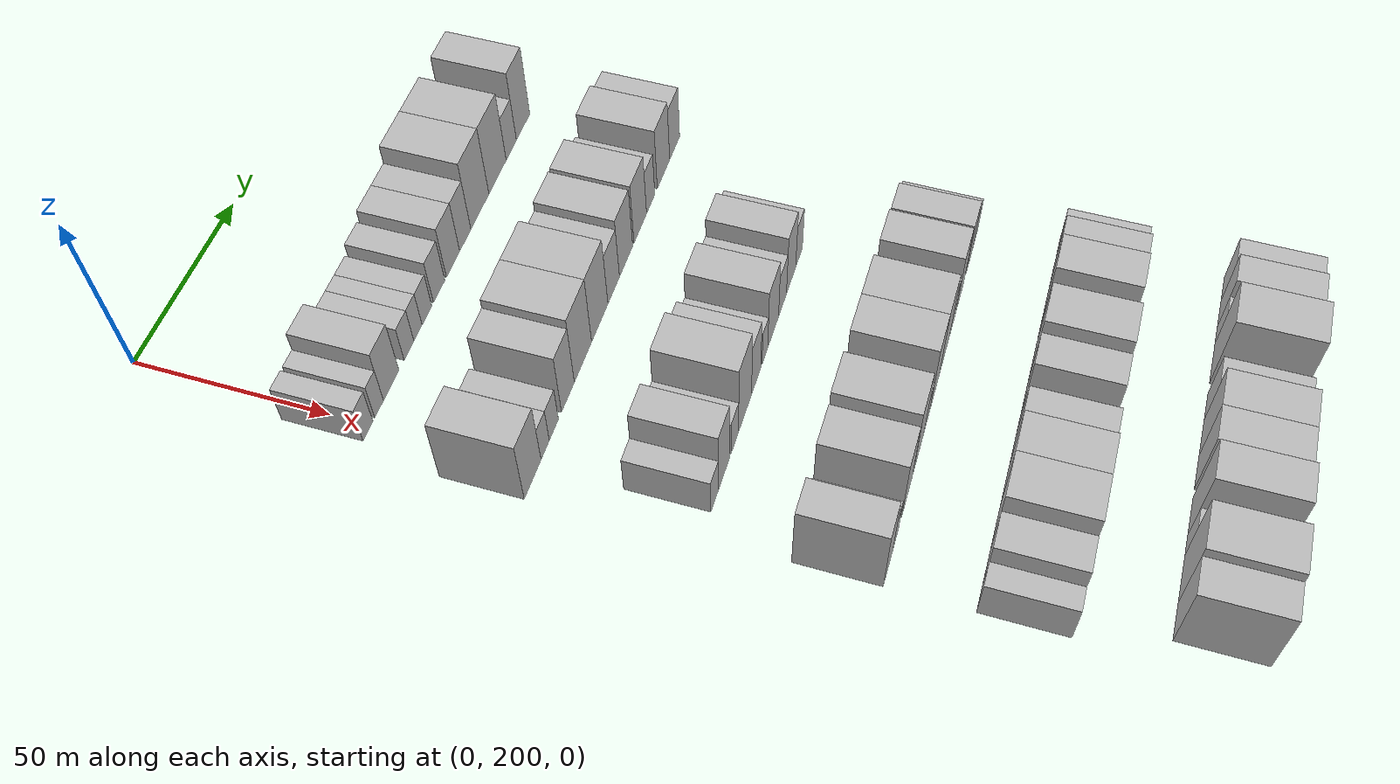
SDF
<sdf version="1.6">
 <world name="default">
  <model name="building_88">
   <static>1</static>
   <pose>50.0000 198.4063 0 0.000000 0.000000 0.000000</pose>
   <link name="link">
    <pose>0 0 6.00 0 0 0</pose>
    <collision name="collision"><geometry><box><size>20.0000 5.4040 12.0000</size></box></geometry></collision>
    <visual name="visual">
     <cast_shadows>0</cast_shadows>
     <geometry><box><size>20.0000 5.4040 12.0000</size></box></geometry>
     <material>
      <script>
       <uri>model://HANNAS_wall/materials/scripts</uri>
       <uri>model://HANNAS_wall/materials/textures</uri>
       <name>vrc/HANNAS_wall</name>
      </script>
     </material>
    </visual>
   </link>
  </model>
  <model name="building_89">
   <static>1</static>
   <pose>50.0000 204.5373 0 0.000000 0.000000 0.000000</pose>
   <link name="link">
    <pose>0 0 6.00 0 0 0</pose>
    <collision name="collision"><geometry><box><size>20.0000 4.8582 12.0000</size></box></geometry></collision>
    <visual name="visual">
     <cast_shadows>0</cast_shadows>
     <geometry><box><size>20.0000 4.8582 12.0000</size></box></geometry>
     <material>
      <script>
       <uri>model://HANNAS_wall/materials/scripts</uri>
       <uri>model://HANNAS_wall/materials/textures</uri>
       <name>vrc/HANNAS_wall</name>
      </script>
     </material>
    </visual>
   </link>
  </model>
  <model name="building_90">
   <static>1</static>
   <pose>50.0000 211.2955 0 0.000000 0.000000 0.000000</pose>
   <link name="link">
    <pose>0 0 9.00 0 0 0</pose>
    <collision name="collision"><geometry><box><size>20.0000 8.6582 18.0000</size></box></geometry></collision>
    <visual name="visual">
     <cast_shadows>0</cast_shadows>
     <geometry><box><size>20.0000 8.6582 18.0000</size></box></geometry>
     <material>
      <script>
       <uri>model://HANNAS_wall/materials/scripts</uri>
       <uri>model://HANNAS_wall/materials/textures</uri>
       <name>vrc/HANNAS_wall</name>
      </script>
     </material>
    </visual>
   </link>
  </model>
  <model name="building_91">
   <static>1</static>
   <pose>50.0000 221.4607 0 0.000000 0.000000 0.000000</pose>
   <link name="link">
    <pose>0 0 6.00 0 0 0</pose>
    <collision name="collision"><geometry><box><size>20.0000 5.6721 12.0000</size></box></geometry></collision>
    <visual name="visual">
     <cast_shadows>0</cast_shadows>
     <geometry><box><size>20.0000 5.6721 12.0000</size></box></geometry>
     <material>
      <script>
       <uri>model://HANNAS_wall/materials/scripts</uri>
       <uri>model://HANNAS_wall/materials/textures</uri>
       <name>vrc/HANNAS_wall</name>
      </script>
     </material>
    </visual>
   </link>
  </model>
  <model name="building_92">
   <static>1</static>
   <pose>50.0000 226.7251 0 0.000000 0.000000 0.000000</pose>
   <link name="link">
    <pose>0 0 6.00 0 0 0</pose>
    <collision name="collision"><geometry><box><size>20.0000 4.8568 12.0000</size></box></geometry></collision>
    <visual name="visual">
     <cast_shadows>0</cast_shadows>
     <geometry><box><size>20.0000 4.8568 12.0000</size></box></geometry>
     <material>
      <script>
       <uri>model://HANNAS_wall/materials/scripts</uri>
       <uri>model://HANNAS_wall/materials/textures</uri>
       <name>vrc/HANNAS_wall</name>
      </script>
     </material>
    </visual>
   </link>
  </model>
  <model name="building_93">
   <static>1</static>
   <pose>50.0000 232.0713 0 0.000000 0.000000 0.000000</pose>
   <link name="link">
    <pose>0 0 6.00 0 0 0</pose>
    <collision name="collision"><geometry><box><size>20.0000 5.8355 12.0000</size></box></geometry></collision>
    <visual name="visual">
     <cast_shadows>0</cast_shadows>
     <geometry><box><size>20.0000 5.8355 12.0000</size></box></geometry>
     <material>
      <script>
       <uri>model://HANNAS_wall/materials/scripts</uri>
       <uri>model://HANNAS_wall/materials/textures</uri>
       <name>vrc/HANNAS_wall</name>
      </script>
     </material>
    </visual>
   </link>
  </model>
  <model name="building_94">
   <static>1</static>
   <pose>50.0000 239.4819 0 0.000000 0.000000 0.000000</pose>
   <link name="link">
    <pose>0 0 7.50 0 0 0</pose>
    <collision name="collision"><geometry><box><size>20.0000 6.9856 15.0000</size></box></geometry></collision>
    <visual name="visual">
     <cast_shadows>0</cast_shadows>
     <geometry><box><size>20.0000 6.9856 15.0000</size></box></geometry>
     <material>
      <script>
       <uri>model://HANNAS_wall/materials/scripts</uri>
       <uri>model://HANNAS_wall/materials/textures</uri>
       <name>vrc/HANNAS_wall</name>
      </script>
     </material>
    </visual>
   </link>
  </model>
  <model name="building_95">
   <static>1</static>
   <pose>50.0000 248.1541 0 0.000000 0.000000 0.000000</pose>
   <link name="link">
    <pose>0 0 9.00 0 0 0</pose>
    <collision name="collision"><geometry><box><size>20.0000 8.3590 18.0000</size></box></geometry></collision>
    <visual name="visual">
     <cast_shadows>0</cast_shadows>
     <geometry><box><size>20.0000 8.3590 18.0000</size></box></geometry>
     <material>
      <script>
       <uri>model://HANNAS_wall/materials/scripts</uri>
       <uri>model://HANNAS_wall/materials/textures</uri>
       <name>vrc/HANNAS_wall</name>
      </script>
     </material>
    </visual>
   </link>
  </model>
  <model name="building_96">
   <static>1</static>
   <pose>50.0000 255.9483 0 0.000000 0.000000 0.000000</pose>
   <link name="link">
    <pose>0 0 9.00 0 0 0</pose>
    <collision name="collision"><geometry><box><size>20.0000 7.2294 18.0000</size></box></geometry></collision>
    <visual name="visual">
     <cast_shadows>0</cast_shadows>
     <geometry><box><size>20.0000 7.2294 18.0000</size></box></geometry>
     <material>
      <script>
       <uri>model://HANNAS_wall/materials/scripts</uri>
       <uri>model://HANNAS_wall/materials/textures</uri>
       <name>vrc/HANNAS_wall</name>
      </script>
     </material>
    </visual>
   </link>
  </model>
  <model name="building_97">
   <static>1</static>
   <pose>50.0000 265.5421 0 0.000000 0.000000 0.000000</pose>
   <link name="link">
    <pose>0 0 12.00 0 0 0</pose>
    <collision name="collision"><geometry><box><size>20.0000 11.9582 24.0000</size></box></geometry></collision>
    <visual name="visual">
     <cast_shadows>0</cast_shadows>
     <geometry><box><size>20.0000 11.9582 24.0000</size></box></geometry>
     <material>
      <script>
       <uri>model://HANNAS_wall/materials/scripts</uri>
       <uri>model://HANNAS_wall/materials/textures</uri>
       <name>vrc/HANNAS_wall</name>
      </script>
     </material>
    </visual>
   </link>
  </model>
  <model name="building_98">
   <static>1</static>
   <pose>50.0000 277.4570 0 0.000000 0.000000 0.000000</pose>
   <link name="link">
    <pose>0 0 12.00 0 0 0</pose>
    <collision name="collision"><geometry><box><size>20.0000 11.8715 24.0000</size></box></geometry></collision>
    <visual name="visual">
     <cast_shadows>0</cast_shadows>
     <geometry><box><size>20.0000 11.8715 24.0000</size></box></geometry>
     <material>
      <script>
       <uri>model://HANNAS_wall/materials/scripts</uri>
       <uri>model://HANNAS_wall/materials/textures</uri>
       <name>vrc/HANNAS_wall</name>
      </script>
     </material>
    </visual>
   </link>
  </model>
  <model name="building_99">
   <static>1</static>
   <pose>50.0000 286.9830 0 0.000000 0.000000 0.000000</pose>
   <link name="link">
    <pose>0 0 7.50 0 0 0</pose>
    <collision name="collision"><geometry><box><size>20.0000 7.1805 15.0000</size></box></geometry></collision>
    <visual name="visual">
     <cast_shadows>0</cast_shadows>
     <geometry><box><size>20.0000 7.1805 15.0000</size></box></geometry>
     <material>
      <script>
       <uri>model://HANNAS_wall/materials/scripts</uri>
       <uri>model://HANNAS_wall/materials/textures</uri>
       <name>vrc/HANNAS_wall</name>
      </script>
     </material>
    </visual>
   </link>
  </model>
  <model name="building_100">
   <static>1</static>
   <pose>50.0000 295.3854 0 0.000000 0.000000 0.000000</pose>
   <link name="link">
    <pose>0 0 12.00 0 0 0</pose>
    <collision name="collision"><geometry><box><size>20.0000 9.6243 24.0000</size></box></geometry></collision>
    <visual name="visual">
     <cast_shadows>0</cast_shadows>
     <geometry><box><size>20.0000 9.6243 24.0000</size></box></geometry>
     <material>
      <script>
       <uri>model://HANNAS_wall/materials/scripts</uri>
       <uri>model://HANNAS_wall/materials/textures</uri>
       <name>vrc/HANNAS_wall</name>
      </script>
     </material>
    </visual>
   </link>
  </model>
  <model name="building_235">
   <static>1</static>
   <pose>90.0000 197.2488 0 0.000000 0.000000 0.000000</pose>
   <link name="link">
    <pose>0 0 10.50 0 0 0</pose>
    <collision name="collision"><geometry><box><size>20.0000 10.4113 21.0000</size></box></geometry></collision>
    <visual name="visual">
     <cast_shadows>0</cast_shadows>
     <geometry><box><size>20.0000 10.4113 21.0000</size></box></geometry>
     <material>
      <script>
       <uri>model://HANNAS_wall/materials/scripts</uri>
       <uri>model://HANNAS_wall/materials/textures</uri>
       <name>vrc/HANNAS_wall</name>
      </script>
     </material>
    </visual>
   </link>
  </model>
  <model name="building_236">
   <static>1</static>
   <pose>90.0000 205.0738 0 0.000000 0.000000 0.000000</pose>
   <link name="link">
    <pose>0 0 6.00 0 0 0</pose>
    <collision name="collision"><geometry><box><size>20.0000 5.2387 12.0000</size></box></geometry></collision>
    <visual name="visual">
     <cast_shadows>0</cast_shadows>
     <geometry><box><size>20.0000 5.2387 12.0000</size></box></geometry>
     <material>
      <script>
       <uri>model://HANNAS_wall/materials/scripts</uri>
       <uri>model://HANNAS_wall/materials/textures</uri>
       <name>vrc/HANNAS_wall</name>
      </script>
     </material>
    </visual>
   </link>
  </model>
  <model name="building_237">
   <static>1</static>
   <pose>90.0000 210.6350 0 0.000000 0.000000 0.000000</pose>
   <link name="link">
    <pose>0 0 6.00 0 0 0</pose>
    <collision name="collision"><geometry><box><size>20.0000 5.8837 12.0000</size></box></geometry></collision>
    <visual name="visual">
     <cast_shadows>0</cast_shadows>
     <geometry><box><size>20.0000 5.8837 12.0000</size></box></geometry>
     <material>
      <script>
       <uri>model://HANNAS_wall/materials/scripts</uri>
       <uri>model://HANNAS_wall/materials/textures</uri>
       <name>vrc/HANNAS_wall</name>
      </script>
     </material>
    </visual>
   </link>
  </model>
  <model name="building_238">
   <static>1</static>
   <pose>90.0000 219.8347 0 0.000000 0.000000 0.000000</pose>
   <link name="link">
    <pose>0 0 10.50 0 0 0</pose>
    <collision name="collision"><geometry><box><size>20.0000 8.5156 21.0000</size></box></geometry></collision>
    <visual name="visual">
     <cast_shadows>0</cast_shadows>
     <geometry><box><size>20.0000 8.5156 21.0000</size></box></geometry>
     <material>
      <script>
       <uri>model://HANNAS_wall/materials/scripts</uri>
       <uri>model://HANNAS_wall/materials/textures</uri>
       <name>vrc/HANNAS_wall</name>
      </script>
     </material>
    </visual>
   </link>
  </model>
  <model name="building_239">
   <static>1</static>
   <pose>90.0000 230.0030 0 0.000000 0.000000 0.000000</pose>
   <link name="link">
    <pose>0 0 12.00 0 0 0</pose>
    <collision name="collision"><geometry><box><size>20.0000 11.8212 24.0000</size></box></geometry></collision>
    <visual name="visual">
     <cast_shadows>0</cast_shadows>
     <geometry><box><size>20.0000 11.8212 24.0000</size></box></geometry>
     <material>
      <script>
       <uri>model://HANNAS_wall/materials/scripts</uri>
       <uri>model://HANNAS_wall/materials/textures</uri>
       <name>vrc/HANNAS_wall</name>
      </script>
     </material>
    </visual>
   </link>
  </model>
  <model name="building_240">
   <static>1</static>
   <pose>90.0000 241.7351 0 0.000000 0.000000 0.000000</pose>
   <link name="link">
    <pose>0 0 12.00 0 0 0</pose>
    <collision name="collision"><geometry><box><size>20.0000 11.6429 24.0000</size></box></geometry></collision>
    <visual name="visual">
     <cast_shadows>0</cast_shadows>
     <geometry><box><size>20.0000 11.6429 24.0000</size></box></geometry>
     <material>
      <script>
       <uri>model://HANNAS_wall/materials/scripts</uri>
       <uri>model://HANNAS_wall/materials/textures</uri>
       <name>vrc/HANNAS_wall</name>
      </script>
     </material>
    </visual>
   </link>
  </model>
  <model name="building_241">
   <static>1</static>
   <pose>90.0000 251.7775 0 0.000000 0.000000 0.000000</pose>
   <link name="link">
    <pose>0 0 9.00 0 0 0</pose>
    <collision name="collision"><geometry><box><size>20.0000 8.4418 18.0000</size></box></geometry></collision>
    <visual name="visual">
     <cast_shadows>0</cast_shadows>
     <geometry><box><size>20.0000 8.4418 18.0000</size></box></geometry>
     <material>
      <script>
       <uri>model://HANNAS_wall/materials/scripts</uri>
       <uri>model://HANNAS_wall/materials/textures</uri>
       <name>vrc/HANNAS_wall</name>
      </script>
     </material>
    </visual>
   </link>
  </model>
  <model name="building_242">
   <static>1</static>
   <pose>90.0000 260.9707 0 0.000000 0.000000 0.000000</pose>
   <link name="link">
    <pose>0 0 10.50 0 0 0</pose>
    <collision name="collision"><geometry><box><size>20.0000 9.9446 21.0000</size></box></geometry></collision>
    <visual name="visual">
     <cast_shadows>0</cast_shadows>
     <geometry><box><size>20.0000 9.9446 21.0000</size></box></geometry>
     <material>
      <script>
       <uri>model://HANNAS_wall/materials/scripts</uri>
       <uri>model://HANNAS_wall/materials/textures</uri>
       <name>vrc/HANNAS_wall</name>
      </script>
     </material>
    </visual>
   </link>
  </model>
  <model name="building_243">
   <static>1</static>
   <pose>90.0000 271.8295 0 0.000000 0.000000 0.000000</pose>
   <link name="link">
    <pose>0 0 10.50 0 0 0</pose>
    <collision name="collision"><geometry><box><size>20.0000 9.7730 21.0000</size></box></geometry></collision>
    <visual name="visual">
     <cast_shadows>0</cast_shadows>
     <geometry><box><size>20.0000 9.7730 21.0000</size></box></geometry>
     <material>
      <script>
       <uri>model://HANNAS_wall/materials/scripts</uri>
       <uri>model://HANNAS_wall/materials/textures</uri>
       <name>vrc/HANNAS_wall</name>
      </script>
     </material>
    </visual>
   </link>
  </model>
  <model name="building_244">
   <static>1</static>
   <pose>90.0000 279.9924 0 0.000000 0.000000 0.000000</pose>
   <link name="link">
    <pose>0 0 7.50 0 0 0</pose>
    <collision name="collision"><geometry><box><size>20.0000 6.5527 15.0000</size></box></geometry></collision>
    <visual name="visual">
     <cast_shadows>0</cast_shadows>
     <geometry><box><size>20.0000 6.5527 15.0000</size></box></geometry>
     <material>
      <script>
       <uri>model://HANNAS_wall/materials/scripts</uri>
       <uri>model://HANNAS_wall/materials/textures</uri>
       <name>vrc/HANNAS_wall</name>
      </script>
     </material>
    </visual>
   </link>
  </model>
  <model name="building_245">
   <static>1</static>
   <pose>90.0000 290.3393 0 0.000000 0.000000 0.000000</pose>
   <link name="link">
    <pose>0 0 10.50 0 0 0</pose>
    <collision name="collision"><geometry><box><size>20.0000 10.1412 21.0000</size></box></geometry></collision>
    <visual name="visual">
     <cast_shadows>0</cast_shadows>
     <geometry><box><size>20.0000 10.1412 21.0000</size></box></geometry>
     <material>
      <script>
       <uri>model://HANNAS_wall/materials/scripts</uri>
       <uri>model://HANNAS_wall/materials/textures</uri>
       <name>vrc/HANNAS_wall</name>
      </script>
     </material>
    </visual>
   </link>
  </model>
  <model name="building_246">
   <static>1</static>
   <pose>90.0000 299.5653 0 0.000000 0.000000 0.000000</pose>
   <link name="link">
    <pose>0 0 9.00 0 0 0</pose>
    <collision name="collision"><geometry><box><size>20.0000 8.3109 18.0000</size></box></geometry></collision>
    <visual name="visual">
     <cast_shadows>0</cast_shadows>
     <geometry><box><size>20.0000 8.3109 18.0000</size></box></geometry>
     <material>
      <script>
       <uri>model://HANNAS_wall/materials/scripts</uri>
       <uri>model://HANNAS_wall/materials/textures</uri>
       <name>vrc/HANNAS_wall</name>
      </script>
     </material>
    </visual>
   </link>
  </model>
  <model name="building_373">
   <static>1</static>
   <pose>130.0000 203.5998 0 0.000000 0.000000 0.000000</pose>
   <link name="link">
    <pose>0 0 6.00 0 0 0</pose>
    <collision name="collision"><geometry><box><size>20.0000 5.8492 12.0000</size></box></geometry></collision>
    <visual name="visual">
     <cast_shadows>0</cast_shadows>
     <geometry><box><size>20.0000 5.8492 12.0000</size></box></geometry>
     <material>
      <script>
       <uri>model://HANNAS_wall/materials/scripts</uri>
       <uri>model://HANNAS_wall/materials/textures</uri>
       <name>vrc/HANNAS_wall</name>
      </script>
     </material>
    </visual>
   </link>
  </model>
  <model name="building_374">
   <static>1</static>
   <pose>130.0000 210.7465 0 0.000000 0.000000 0.000000</pose>
   <link name="link">
    <pose>0 0 10.50 0 0 0</pose>
    <collision name="collision"><geometry><box><size>20.0000 8.4442 21.0000</size></box></geometry></collision>
    <visual name="visual">
     <cast_shadows>0</cast_shadows>
     <geometry><box><size>20.0000 8.4442 21.0000</size></box></geometry>
     <material>
      <script>
       <uri>model://HANNAS_wall/materials/scripts</uri>
       <uri>model://HANNAS_wall/materials/textures</uri>
       <name>vrc/HANNAS_wall</name>
      </script>
     </material>
    </visual>
   </link>
  </model>
  <model name="building_375">
   <static>1</static>
   <pose>130.0000 218.9657 0 0.000000 0.000000 0.000000</pose>
   <link name="link">
    <pose>0 0 6.00 0 0 0</pose>
    <collision name="collision"><geometry><box><size>20.0000 5.9942 12.0000</size></box></geometry></collision>
    <visual name="visual">
     <cast_shadows>0</cast_shadows>
     <geometry><box><size>20.0000 5.9942 12.0000</size></box></geometry>
     <material>
      <script>
       <uri>model://HANNAS_wall/materials/scripts</uri>
       <uri>model://HANNAS_wall/materials/textures</uri>
       <name>vrc/HANNAS_wall</name>
      </script>
     </material>
    </visual>
   </link>
  </model>
  <model name="building_376">
   <static>1</static>
   <pose>130.0000 227.2033 0 0.000000 0.000000 0.000000</pose>
   <link name="link">
    <pose>0 0 12.00 0 0 0</pose>
    <collision name="collision"><geometry><box><size>20.0000 10.4810 24.0000</size></box></geometry></collision>
    <visual name="visual">
     <cast_shadows>0</cast_shadows>
     <geometry><box><size>20.0000 10.4810 24.0000</size></box></geometry>
     <material>
      <script>
       <uri>model://HANNAS_wall/materials/scripts</uri>
       <uri>model://HANNAS_wall/materials/textures</uri>
       <name>vrc/HANNAS_wall</name>
      </script>
     </material>
    </visual>
   </link>
  </model>
  <model name="building_377">
   <static>1</static>
   <pose>130.0000 236.3045 0 0.000000 0.000000 0.000000</pose>
   <link name="link">
    <pose>0 0 9.00 0 0 0</pose>
    <collision name="collision"><geometry><box><size>20.0000 7.7214 18.0000</size></box></geometry></collision>
    <visual name="visual">
     <cast_shadows>0</cast_shadows>
     <geometry><box><size>20.0000 7.7214 18.0000</size></box></geometry>
     <material>
      <script>
       <uri>model://HANNAS_wall/materials/scripts</uri>
       <uri>model://HANNAS_wall/materials/textures</uri>
       <name>vrc/HANNAS_wall</name>
      </script>
     </material>
    </visual>
   </link>
  </model>
  <model name="building_378">
   <static>1</static>
   <pose>130.0000 243.6128 0 0.000000 0.000000 0.000000</pose>
   <link name="link">
    <pose>0 0 6.00 0 0 0</pose>
    <collision name="collision"><geometry><box><size>20.0000 4.8952 12.0000</size></box></geometry></collision>
    <visual name="visual">
     <cast_shadows>0</cast_shadows>
     <geometry><box><size>20.0000 4.8952 12.0000</size></box></geometry>
     <material>
      <script>
       <uri>model://HANNAS_wall/materials/scripts</uri>
       <uri>model://HANNAS_wall/materials/textures</uri>
       <name>vrc/HANNAS_wall</name>
      </script>
     </material>
    </visual>
   </link>
  </model>
  <model name="building_379">
   <static>1</static>
   <pose>130.0000 250.7556 0 0.000000 0.000000 0.000000</pose>
   <link name="link">
    <pose>0 0 10.50 0 0 0</pose>
    <collision name="collision"><geometry><box><size>20.0000 9.3904 21.0000</size></box></geometry></collision>
    <visual name="visual">
     <cast_shadows>0</cast_shadows>
     <geometry><box><size>20.0000 9.3904 21.0000</size></box></geometry>
     <material>
      <script>
       <uri>model://HANNAS_wall/materials/scripts</uri>
       <uri>model://HANNAS_wall/materials/textures</uri>
       <name>vrc/HANNAS_wall</name>
      </script>
     </material>
    </visual>
   </link>
  </model>
  <model name="building_380">
   <static>1</static>
   <pose>130.0000 258.9596 0 0.000000 0.000000 0.000000</pose>
   <link name="link">
    <pose>0 0 7.50 0 0 0</pose>
    <collision name="collision"><geometry><box><size>20.0000 7.0175 15.0000</size></box></geometry></collision>
    <visual name="visual">
     <cast_shadows>0</cast_shadows>
     <geometry><box><size>20.0000 7.0175 15.0000</size></box></geometry>
     <material>
      <script>
       <uri>model://HANNAS_wall/materials/scripts</uri>
       <uri>model://HANNAS_wall/materials/textures</uri>
       <name>vrc/HANNAS_wall</name>
      </script>
     </material>
    </visual>
   </link>
  </model>
  <model name="building_381">
   <static>1</static>
   <pose>130.0000 266.6723 0 0.000000 0.000000 0.000000</pose>
   <link name="link">
    <pose>0 0 10.50 0 0 0</pose>
    <collision name="collision"><geometry><box><size>20.0000 8.4079 21.0000</size></box></geometry></collision>
    <visual name="visual">
     <cast_shadows>0</cast_shadows>
     <geometry><box><size>20.0000 8.4079 21.0000</size></box></geometry>
     <material>
      <script>
       <uri>model://HANNAS_wall/materials/scripts</uri>
       <uri>model://HANNAS_wall/materials/textures</uri>
       <name>vrc/HANNAS_wall</name>
      </script>
     </material>
    </visual>
   </link>
  </model>
  <model name="building_382">
   <static>1</static>
   <pose>130.0000 273.9990 0 0.000000 0.000000 0.000000</pose>
   <link name="link">
    <pose>0 0 7.50 0 0 0</pose>
    <collision name="collision"><geometry><box><size>20.0000 6.2455 15.0000</size></box></geometry></collision>
    <visual name="visual">
     <cast_shadows>0</cast_shadows>
     <geometry><box><size>20.0000 6.2455 15.0000</size></box></geometry>
     <material>
      <script>
       <uri>model://HANNAS_wall/materials/scripts</uri>
       <uri>model://HANNAS_wall/materials/textures</uri>
       <name>vrc/HANNAS_wall</name>
      </script>
     </material>
    </visual>
   </link>
  </model>
  <model name="building_504">
   <static>1</static>
   <pose>170.0000 198.3753 0 0.000000 0.000000 0.000000</pose>
   <link name="link">
    <pose>0 0 10.50 0 0 0</pose>
    <collision name="collision"><geometry><box><size>20.0000 8.8227 21.0000</size></box></geometry></collision>
    <visual name="visual">
     <cast_shadows>0</cast_shadows>
     <geometry><box><size>20.0000 8.8227 21.0000</size></box></geometry>
     <material>
      <script>
       <uri>model://HANNAS_wall/materials/scripts</uri>
       <uri>model://HANNAS_wall/materials/textures</uri>
       <name>vrc/HANNAS_wall</name>
      </script>
     </material>
    </visual>
   </link>
  </model>
  <model name="building_505">
   <static>1</static>
   <pose>170.0000 205.4910 0 0.000000 0.000000 0.000000</pose>
   <link name="link">
    <pose>0 0 6.00 0 0 0</pose>
    <collision name="collision"><geometry><box><size>20.0000 5.4086 12.0000</size></box></geometry></collision>
    <visual name="visual">
     <cast_shadows>0</cast_shadows>
     <geometry><box><size>20.0000 5.4086 12.0000</size></box></geometry>
     <material>
      <script>
       <uri>model://HANNAS_wall/materials/scripts</uri>
       <uri>model://HANNAS_wall/materials/textures</uri>
       <name>vrc/HANNAS_wall</name>
      </script>
     </material>
    </visual>
   </link>
  </model>
  <model name="building_506">
   <static>1</static>
   <pose>170.0000 216.3439 0 0.000000 0.000000 0.000000</pose>
   <link name="link">
    <pose>0 0 10.50 0 0 0</pose>
    <collision name="collision"><geometry><box><size>20.0000 10.2972 21.0000</size></box></geometry></collision>
    <visual name="visual">
     <cast_shadows>0</cast_shadows>
     <geometry><box><size>20.0000 10.2972 21.0000</size></box></geometry>
     <material>
      <script>
       <uri>model://HANNAS_wall/materials/scripts</uri>
       <uri>model://HANNAS_wall/materials/textures</uri>
       <name>vrc/HANNAS_wall</name>
      </script>
     </material>
    </visual>
   </link>
  </model>
  <model name="building_507">
   <static>1</static>
   <pose>170.0000 228.0105 0 0.000000 0.000000 0.000000</pose>
   <link name="link">
    <pose>0 0 12.00 0 0 0</pose>
    <collision name="collision"><geometry><box><size>20.0000 11.0360 24.0000</size></box></geometry></collision>
    <visual name="visual">
     <cast_shadows>0</cast_shadows>
     <geometry><box><size>20.0000 11.0360 24.0000</size></box></geometry>
     <material>
      <script>
       <uri>model://HANNAS_wall/materials/scripts</uri>
       <uri>model://HANNAS_wall/materials/textures</uri>
       <name>vrc/HANNAS_wall</name>
      </script>
     </material>
    </visual>
   </link>
  </model>
  <model name="building_508">
   <static>1</static>
   <pose>170.0000 236.4474 0 0.000000 0.000000 0.000000</pose>
   <link name="link">
    <pose>0 0 6.00 0 0 0</pose>
    <collision name="collision"><geometry><box><size>20.0000 5.8377 12.0000</size></box></geometry></collision>
    <visual name="visual">
     <cast_shadows>0</cast_shadows>
     <geometry><box><size>20.0000 5.8377 12.0000</size></box></geometry>
     <material>
      <script>
       <uri>model://HANNAS_wall/materials/scripts</uri>
       <uri>model://HANNAS_wall/materials/textures</uri>
       <name>vrc/HANNAS_wall</name>
      </script>
     </material>
    </visual>
   </link>
  </model>
  <model name="building_509">
   <static>1</static>
   <pose>170.0000 244.5818 0 0.000000 0.000000 0.000000</pose>
   <link name="link">
    <pose>0 0 12.00 0 0 0</pose>
    <collision name="collision"><geometry><box><size>20.0000 10.4312 24.0000</size></box></geometry></collision>
    <visual name="visual">
     <cast_shadows>0</cast_shadows>
     <geometry><box><size>20.0000 10.4312 24.0000</size></box></geometry>
     <material>
      <script>
       <uri>model://HANNAS_wall/materials/scripts</uri>
       <uri>model://HANNAS_wall/materials/textures</uri>
       <name>vrc/HANNAS_wall</name>
      </script>
     </material>
    </visual>
   </link>
  </model>
  <model name="building_510">
   <static>1</static>
   <pose>170.0000 255.4955 0 0.000000 0.000000 0.000000</pose>
   <link name="link">
    <pose>0 0 12.00 0 0 0</pose>
    <collision name="collision"><geometry><box><size>20.0000 11.3961 24.0000</size></box></geometry></collision>
    <visual name="visual">
     <cast_shadows>0</cast_shadows>
     <geometry><box><size>20.0000 11.3961 24.0000</size></box></geometry>
     <material>
      <script>
       <uri>model://HANNAS_wall/materials/scripts</uri>
       <uri>model://HANNAS_wall/materials/textures</uri>
       <name>vrc/HANNAS_wall</name>
      </script>
     </material>
    </visual>
   </link>
  </model>
  <model name="building_511">
   <static>1</static>
   <pose>170.0000 264.2254 0 0.000000 0.000000 0.000000</pose>
   <link name="link">
    <pose>0 0 7.50 0 0 0</pose>
    <collision name="collision"><geometry><box><size>20.0000 6.0638 15.0000</size></box></geometry></collision>
    <visual name="visual">
     <cast_shadows>0</cast_shadows>
     <geometry><box><size>20.0000 6.0638 15.0000</size></box></geometry>
     <material>
      <script>
       <uri>model://HANNAS_wall/materials/scripts</uri>
       <uri>model://HANNAS_wall/materials/textures</uri>
       <name>vrc/HANNAS_wall</name>
      </script>
     </material>
    </visual>
   </link>
  </model>
  <model name="building_512">
   <static>1</static>
   <pose>170.0000 273.0009 0 0.000000 0.000000 0.000000</pose>
   <link name="link">
    <pose>0 0 10.50 0 0 0</pose>
    <collision name="collision"><geometry><box><size>20.0000 9.4872 21.0000</size></box></geometry></collision>
    <visual name="visual">
     <cast_shadows>0</cast_shadows>
     <geometry><box><size>20.0000 9.4872 21.0000</size></box></geometry>
     <material>
      <script>
       <uri>model://HANNAS_wall/materials/scripts</uri>
       <uri>model://HANNAS_wall/materials/textures</uri>
       <name>vrc/HANNAS_wall</name>
      </script>
     </material>
    </visual>
   </link>
  </model>
  <model name="building_513">
   <static>1</static>
   <pose>170.0000 284.8456 0 0.000000 0.000000 0.000000</pose>
   <link name="link">
    <pose>0 0 9.00 0 0 0</pose>
    <collision name="collision"><geometry><box><size>20.0000 8.2023 18.0000</size></box></geometry></collision>
    <visual name="visual">
     <cast_shadows>0</cast_shadows>
     <geometry><box><size>20.0000 8.2023 18.0000</size></box></geometry>
     <material>
      <script>
       <uri>model://HANNAS_wall/materials/scripts</uri>
       <uri>model://HANNAS_wall/materials/textures</uri>
       <name>vrc/HANNAS_wall</name>
      </script>
     </material>
    </visual>
   </link>
  </model>
  <model name="building_514">
   <static>1</static>
   <pose>170.0000 291.9371 0 0.000000 0.000000 0.000000</pose>
   <link name="link">
    <pose>0 0 6.00 0 0 0</pose>
    <collision name="collision"><geometry><box><size>20.0000 5.9806 12.0000</size></box></geometry></collision>
    <visual name="visual">
     <cast_shadows>0</cast_shadows>
     <geometry><box><size>20.0000 5.9806 12.0000</size></box></geometry>
     <material>
      <script>
       <uri>model://HANNAS_wall/materials/scripts</uri>
       <uri>model://HANNAS_wall/materials/textures</uri>
       <name>vrc/HANNAS_wall</name>
      </script>
     </material>
    </visual>
   </link>
  </model>
  <model name="building_641">
   <static>1</static>
   <pose>210.0000 196.6563 0 0.000000 0.000000 0.000000</pose>
   <link name="link">
    <pose>0 0 6.00 0 0 0</pose>
    <collision name="collision"><geometry><box><size>20.0000 5.8273 12.0000</size></box></geometry></collision>
    <visual name="visual">
     <cast_shadows>0</cast_shadows>
     <geometry><box><size>20.0000 5.8273 12.0000</size></box></geometry>
     <material>
      <script>
       <uri>model://HANNAS_wall/materials/scripts</uri>
       <uri>model://HANNAS_wall/materials/textures</uri>
       <name>vrc/HANNAS_wall</name>
      </script>
     </material>
    </visual>
   </link>
  </model>
  <model name="building_642">
   <static>1</static>
   <pose>210.0000 203.9281 0 0.000000 0.000000 0.000000</pose>
   <link name="link">
    <pose>0 0 9.00 0 0 0</pose>
    <collision name="collision"><geometry><box><size>20.0000 8.7163 18.0000</size></box></geometry></collision>
    <visual name="visual">
     <cast_shadows>0</cast_shadows>
     <geometry><box><size>20.0000 8.7163 18.0000</size></box></geometry>
     <material>
      <script>
       <uri>model://HANNAS_wall/materials/scripts</uri>
       <uri>model://HANNAS_wall/materials/textures</uri>
       <name>vrc/HANNAS_wall</name>
      </script>
     </material>
    </visual>
   </link>
  </model>
  <model name="building_643">
   <static>1</static>
   <pose>210.0000 213.9675 0 0.000000 0.000000 0.000000</pose>
   <link name="link">
    <pose>0 0 12.00 0 0 0</pose>
    <collision name="collision"><geometry><box><size>20.0000 11.3625 24.0000</size></box></geometry></collision>
    <visual name="visual">
     <cast_shadows>0</cast_shadows>
     <geometry><box><size>20.0000 11.3625 24.0000</size></box></geometry>
     <material>
      <script>
       <uri>model://HANNAS_wall/materials/scripts</uri>
       <uri>model://HANNAS_wall/materials/textures</uri>
       <name>vrc/HANNAS_wall</name>
      </script>
     </material>
    </visual>
   </link>
  </model>
  <model name="building_644">
   <static>1</static>
   <pose>210.0000 224.7559 0 0.000000 0.000000 0.000000</pose>
   <link name="link">
    <pose>0 0 12.00 0 0 0</pose>
    <collision name="collision"><geometry><box><size>20.0000 10.2143 24.0000</size></box></geometry></collision>
    <visual name="visual">
     <cast_shadows>0</cast_shadows>
     <geometry><box><size>20.0000 10.2143 24.0000</size></box></geometry>
     <material>
      <script>
       <uri>model://HANNAS_wall/materials/scripts</uri>
       <uri>model://HANNAS_wall/materials/textures</uri>
       <name>vrc/HANNAS_wall</name>
      </script>
     </material>
    </visual>
   </link>
  </model>
  <model name="building_645">
   <static>1</static>
   <pose>210.0000 234.1056 0 0.000000 0.000000 0.000000</pose>
   <link name="link">
    <pose>0 0 10.50 0 0 0</pose>
    <collision name="collision"><geometry><box><size>20.0000 8.4850 21.0000</size></box></geometry></collision>
    <visual name="visual">
     <cast_shadows>0</cast_shadows>
     <geometry><box><size>20.0000 8.4850 21.0000</size></box></geometry>
     <material>
      <script>
       <uri>model://HANNAS_wall/materials/scripts</uri>
       <uri>model://HANNAS_wall/materials/textures</uri>
       <name>vrc/HANNAS_wall</name>
      </script>
     </material>
    </visual>
   </link>
  </model>
  <model name="building_646">
   <static>1</static>
   <pose>210.0000 241.3214 0 0.000000 0.000000 0.000000</pose>
   <link name="link">
    <pose>0 0 6.00 0 0 0</pose>
    <collision name="collision"><geometry><box><size>20.0000 5.9466 12.0000</size></box></geometry></collision>
    <visual name="visual">
     <cast_shadows>0</cast_shadows>
     <geometry><box><size>20.0000 5.9466 12.0000</size></box></geometry>
     <material>
      <script>
       <uri>model://HANNAS_wall/materials/scripts</uri>
       <uri>model://HANNAS_wall/materials/textures</uri>
       <name>vrc/HANNAS_wall</name>
      </script>
     </material>
    </visual>
   </link>
  </model>
  <model name="building_647">
   <static>1</static>
   <pose>210.0000 248.6052 0 0.000000 0.000000 0.000000</pose>
   <link name="link">
    <pose>0 0 10.50 0 0 0</pose>
    <collision name="collision"><geometry><box><size>20.0000 8.6211 21.0000</size></box></geometry></collision>
    <visual name="visual">
     <cast_shadows>0</cast_shadows>
     <geometry><box><size>20.0000 8.6211 21.0000</size></box></geometry>
     <material>
      <script>
       <uri>model://HANNAS_wall/materials/scripts</uri>
       <uri>model://HANNAS_wall/materials/textures</uri>
       <name>vrc/HANNAS_wall</name>
      </script>
     </material>
    </visual>
   </link>
  </model>
  <model name="building_648">
   <static>1</static>
   <pose>210.0000 259.4285 0 0.000000 0.000000 0.000000</pose>
   <link name="link">
    <pose>0 0 12.00 0 0 0</pose>
    <collision name="collision"><geometry><box><size>20.0000 11.0254 24.0000</size></box></geometry></collision>
    <visual name="visual">
     <cast_shadows>0</cast_shadows>
     <geometry><box><size>20.0000 11.0254 24.0000</size></box></geometry>
     <material>
      <script>
       <uri>model://HANNAS_wall/materials/scripts</uri>
       <uri>model://HANNAS_wall/materials/textures</uri>
       <name>vrc/HANNAS_wall</name>
      </script>
     </material>
    </visual>
   </link>
  </model>
  <model name="building_649">
   <static>1</static>
   <pose>210.0000 269.3630 0 0.000000 0.000000 0.000000</pose>
   <link name="link">
    <pose>0 0 6.00 0 0 0</pose>
    <collision name="collision"><geometry><box><size>20.0000 4.8438 12.0000</size></box></geometry></collision>
    <visual name="visual">
     <cast_shadows>0</cast_shadows>
     <geometry><box><size>20.0000 4.8438 12.0000</size></box></geometry>
     <material>
      <script>
       <uri>model://HANNAS_wall/materials/scripts</uri>
       <uri>model://HANNAS_wall/materials/textures</uri>
       <name>vrc/HANNAS_wall</name>
      </script>
     </material>
    </visual>
   </link>
  </model>
  <model name="building_650">
   <static>1</static>
   <pose>210.0000 276.8859 0 0.000000 0.000000 0.000000</pose>
   <link name="link">
    <pose>0 0 10.50 0 0 0</pose>
    <collision name="collision"><geometry><box><size>20.0000 10.2021 21.0000</size></box></geometry></collision>
    <visual name="visual">
     <cast_shadows>0</cast_shadows>
     <geometry><box><size>20.0000 10.2021 21.0000</size></box></geometry>
     <material>
      <script>
       <uri>model://HANNAS_wall/materials/scripts</uri>
       <uri>model://HANNAS_wall/materials/textures</uri>
       <name>vrc/HANNAS_wall</name>
      </script>
     </material>
    </visual>
   </link>
  </model>
  <model name="building_651">
   <static>1</static>
   <pose>210.0000 286.1921 0 0.000000 0.000000 0.000000</pose>
   <link name="link">
    <pose>0 0 9.00 0 0 0</pose>
    <collision name="collision"><geometry><box><size>20.0000 8.4103 18.0000</size></box></geometry></collision>
    <visual name="visual">
     <cast_shadows>0</cast_shadows>
     <geometry><box><size>20.0000 8.4103 18.0000</size></box></geometry>
     <material>
      <script>
       <uri>model://HANNAS_wall/materials/scripts</uri>
       <uri>model://HANNAS_wall/materials/textures</uri>
       <name>vrc/HANNAS_wall</name>
      </script>
     </material>
    </visual>
   </link>
  </model>
  <model name="building_652">
   <static>1</static>
   <pose>210.0000 295.1217 0 0.000000 0.000000 0.000000</pose>
   <link name="link">
    <pose>0 0 6.00 0 0 0</pose>
    <collision name="collision"><geometry><box><size>20.0000 5.4489 12.0000</size></box></geometry></collision>
    <visual name="visual">
     <cast_shadows>0</cast_shadows>
     <geometry><box><size>20.0000 5.4489 12.0000</size></box></geometry>
     <material>
      <script>
       <uri>model://HANNAS_wall/materials/scripts</uri>
       <uri>model://HANNAS_wall/materials/textures</uri>
       <name>vrc/HANNAS_wall</name>
      </script>
     </material>
    </visual>
   </link>
  </model>
  <model name="building_778">
   <static>1</static>
   <pose>250.0000 203.4806 0 0.000000 0.000000 0.000000</pose>
   <link name="link">
    <pose>0 0 10.50 0 0 0</pose>
    <collision name="collision"><geometry><box><size>20.0000 8.8892 21.0000</size></box></geometry></collision>
    <visual name="visual">
     <cast_shadows>0</cast_shadows>
     <geometry><box><size>20.0000 8.8892 21.0000</size></box></geometry>
     <material>
      <script>
       <uri>model://HANNAS_wall/materials/scripts</uri>
       <uri>model://HANNAS_wall/materials/textures</uri>
       <name>vrc/HANNAS_wall</name>
      </script>
     </material>
    </visual>
   </link>
  </model>
  <model name="building_779">
   <static>1</static>
   <pose>250.0000 213.7248 0 0.000000 0.000000 0.000000</pose>
   <link name="link">
    <pose>0 0 12.00 0 0 0</pose>
    <collision name="collision"><geometry><box><size>20.0000 11.5992 24.0000</size></box></geometry></collision>
    <visual name="visual">
     <cast_shadows>0</cast_shadows>
     <geometry><box><size>20.0000 11.5992 24.0000</size></box></geometry>
     <material>
      <script>
       <uri>model://HANNAS_wall/materials/scripts</uri>
       <uri>model://HANNAS_wall/materials/textures</uri>
       <name>vrc/HANNAS_wall</name>
      </script>
     </material>
    </visual>
   </link>
  </model>
  <model name="building_780">
   <static>1</static>
   <pose>250.0000 222.0364 0 0.000000 0.000000 0.000000</pose>
   <link name="link">
    <pose>0 0 6.00 0 0 0</pose>
    <collision name="collision"><geometry><box><size>20.0000 5.0239 12.0000</size></box></geometry></collision>
    <visual name="visual">
     <cast_shadows>0</cast_shadows>
     <geometry><box><size>20.0000 5.0239 12.0000</size></box></geometry>
     <material>
      <script>
       <uri>model://HANNAS_wall/materials/scripts</uri>
       <uri>model://HANNAS_wall/materials/textures</uri>
       <name>vrc/HANNAS_wall</name>
      </script>
     </material>
    </visual>
   </link>
  </model>
  <model name="building_781">
   <static>1</static>
   <pose>250.0000 229.4547 0 0.000000 0.000000 0.000000</pose>
   <link name="link">
    <pose>0 0 12.00 0 0 0</pose>
    <collision name="collision"><geometry><box><size>20.0000 9.8127 24.0000</size></box></geometry></collision>
    <visual name="visual">
     <cast_shadows>0</cast_shadows>
     <geometry><box><size>20.0000 9.8127 24.0000</size></box></geometry>
     <material>
      <script>
       <uri>model://HANNAS_wall/materials/scripts</uri>
       <uri>model://HANNAS_wall/materials/textures</uri>
       <name>vrc/HANNAS_wall</name>
      </script>
     </material>
    </visual>
   </link>
  </model>
  <model name="building_782">
   <static>1</static>
   <pose>250.0000 240.8483 0 0.000000 0.000000 0.000000</pose>
   <link name="link">
    <pose>0 0 10.50 0 0 0</pose>
    <collision name="collision"><geometry><box><size>20.0000 8.9747 21.0000</size></box></geometry></collision>
    <visual name="visual">
     <cast_shadows>0</cast_shadows>
     <geometry><box><size>20.0000 8.9747 21.0000</size></box></geometry>
     <material>
      <script>
       <uri>model://HANNAS_wall/materials/scripts</uri>
       <uri>model://HANNAS_wall/materials/textures</uri>
       <name>vrc/HANNAS_wall</name>
      </script>
     </material>
    </visual>
   </link>
  </model>
  <model name="building_783">
   <static>1</static>
   <pose>250.0000 250.2182 0 0.000000 0.000000 0.000000</pose>
   <link name="link">
    <pose>0 0 10.50 0 0 0</pose>
    <collision name="collision"><geometry><box><size>20.0000 9.7651 21.0000</size></box></geometry></collision>
    <visual name="visual">
     <cast_shadows>0</cast_shadows>
     <geometry><box><size>20.0000 9.7651 21.0000</size></box></geometry>
     <material>
      <script>
       <uri>model://HANNAS_wall/materials/scripts</uri>
       <uri>model://HANNAS_wall/materials/textures</uri>
       <name>vrc/HANNAS_wall</name>
      </script>
     </material>
    </visual>
   </link>
  </model>
  <model name="building_784">
   <static>1</static>
   <pose>250.0000 258.8095 0 0.000000 0.000000 0.000000</pose>
   <link name="link">
    <pose>0 0 7.50 0 0 0</pose>
    <collision name="collision"><geometry><box><size>20.0000 7.4175 15.0000</size></box></geometry></collision>
    <visual name="visual">
     <cast_shadows>0</cast_shadows>
     <geometry><box><size>20.0000 7.4175 15.0000</size></box></geometry>
     <material>
      <script>
       <uri>model://HANNAS_wall/materials/scripts</uri>
       <uri>model://HANNAS_wall/materials/textures</uri>
       <name>vrc/HANNAS_wall</name>
      </script>
     </material>
    </visual>
   </link>
  </model>
  <model name="building_785">
   <static>1</static>
   <pose>250.0000 271.3063 0 0.000000 0.000000 0.000000</pose>
   <link name="link">
    <pose>0 0 12.00 0 0 0</pose>
    <collision name="collision"><geometry><box><size>20.0000 11.5762 24.0000</size></box></geometry></collision>
    <visual name="visual">
     <cast_shadows>0</cast_shadows>
     <geometry><box><size>20.0000 11.5762 24.0000</size></box></geometry>
     <material>
      <script>
       <uri>model://HANNAS_wall/materials/scripts</uri>
       <uri>model://HANNAS_wall/materials/textures</uri>
       <name>vrc/HANNAS_wall</name>
      </script>
     </material>
    </visual>
   </link>
  </model>
  <model name="building_786">
   <static>1</static>
   <pose>250.0000 279.6418 0 0.000000 0.000000 0.000000</pose>
   <link name="link">
    <pose>0 0 6.00 0 0 0</pose>
    <collision name="collision"><geometry><box><size>20.0000 5.0948 12.0000</size></box></geometry></collision>
    <visual name="visual">
     <cast_shadows>0</cast_shadows>
     <geometry><box><size>20.0000 5.0948 12.0000</size></box></geometry>
     <material>
      <script>
       <uri>model://HANNAS_wall/materials/scripts</uri>
       <uri>model://HANNAS_wall/materials/textures</uri>
       <name>vrc/HANNAS_wall</name>
      </script>
     </material>
    </visual>
   </link>
  </model>
  <model name="building_787">
   <static>1</static>
   <pose>250.0000 286.1742 0 0.000000 0.000000 0.000000</pose>
   <link name="link">
    <pose>0 0 9.00 0 0 0</pose>
    <collision name="collision"><geometry><box><size>20.0000 7.9699 18.0000</size></box></geometry></collision>
    <visual name="visual">
     <cast_shadows>0</cast_shadows>
     <geometry><box><size>20.0000 7.9699 18.0000</size></box></geometry>
     <material>
      <script>
       <uri>model://HANNAS_wall/materials/scripts</uri>
       <uri>model://HANNAS_wall/materials/textures</uri>
       <name>vrc/HANNAS_wall</name>
      </script>
     </material>
    </visual>
   </link>
  </model>
  <model name="building_788">
   <static>1</static>
   <pose>250.0000 293.8813 0 0.000000 0.000000 0.000000</pose>
   <link name="link">
    <pose>0 0 7.50 0 0 0</pose>
    <collision name="collision"><geometry><box><size>20.0000 7.4444 15.0000</size></box></geometry></collision>
    <visual name="visual">
     <cast_shadows>0</cast_shadows>
     <geometry><box><size>20.0000 7.4444 15.0000</size></box></geometry>
     <material>
      <script>
       <uri>model://HANNAS_wall/materials/scripts</uri>
       <uri>model://HANNAS_wall/materials/textures</uri>
       <name>vrc/HANNAS_wall</name>
      </script>
     </material>
    </visual>
   </link>
  </model>
 </world>
</sdf>
